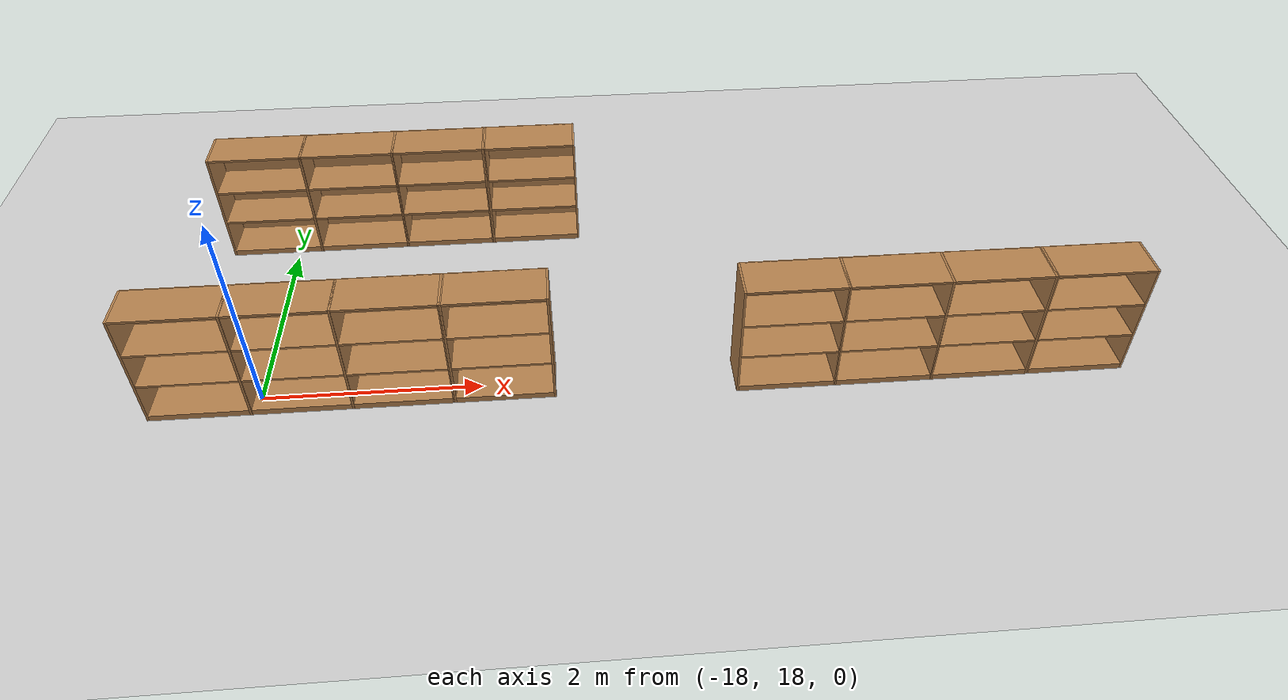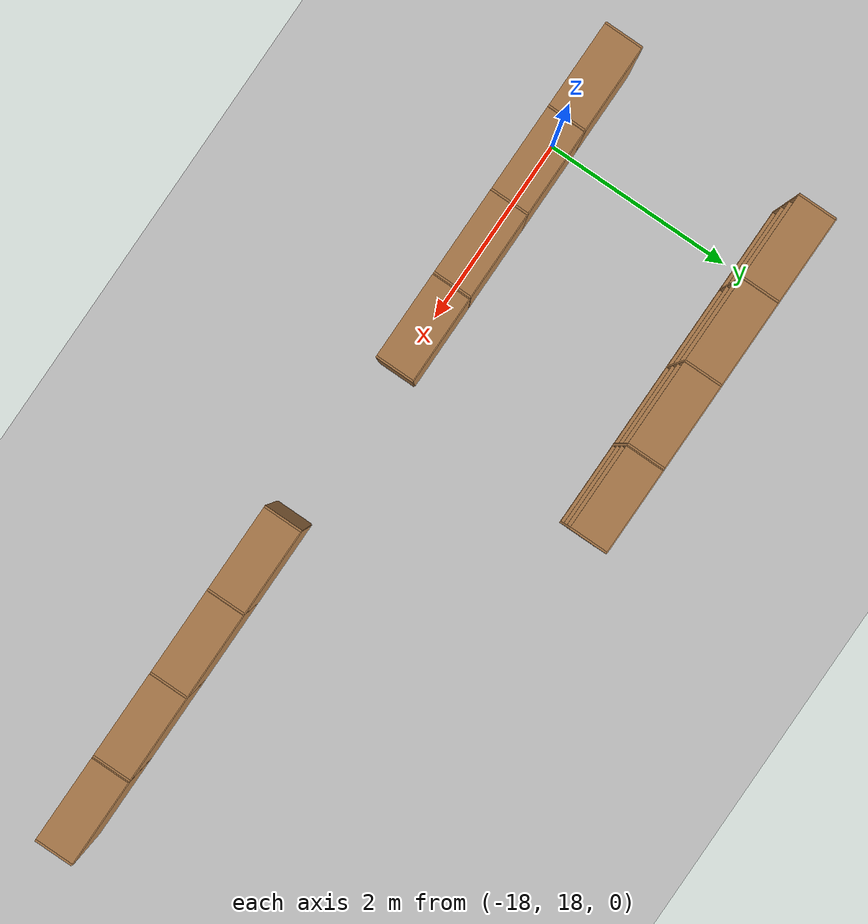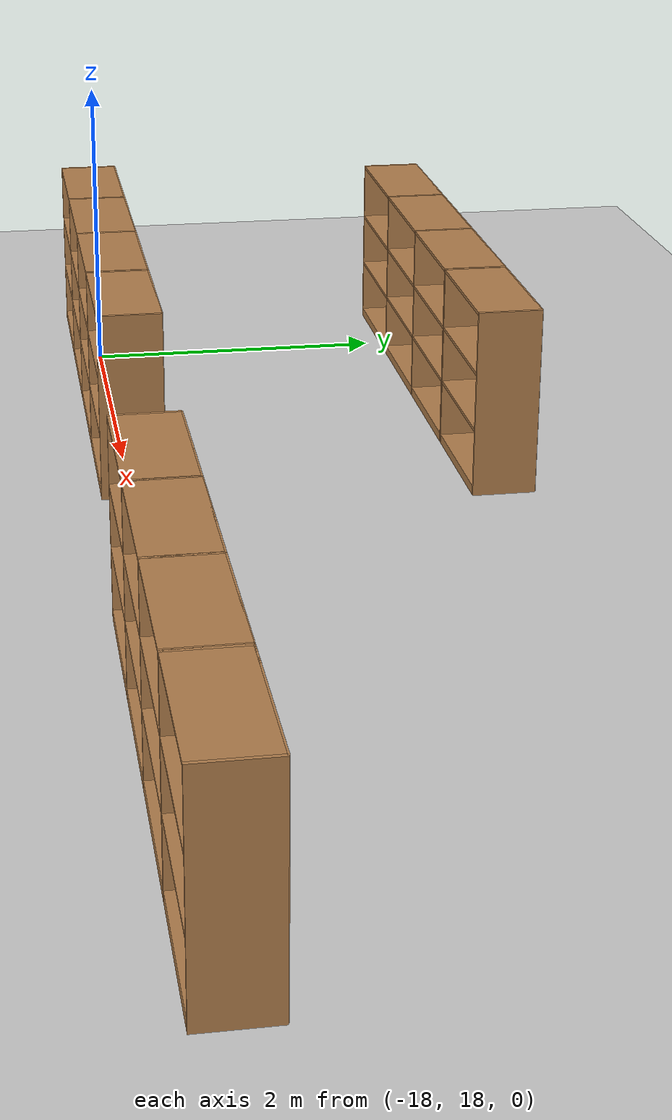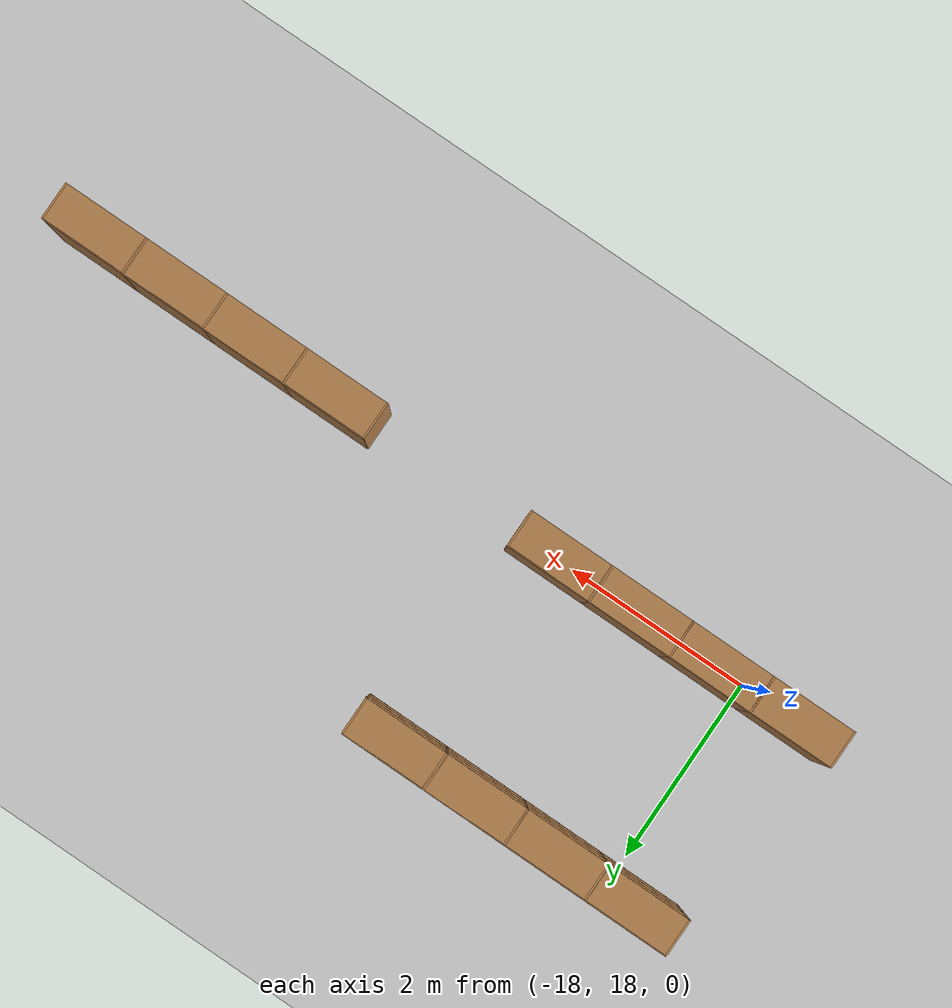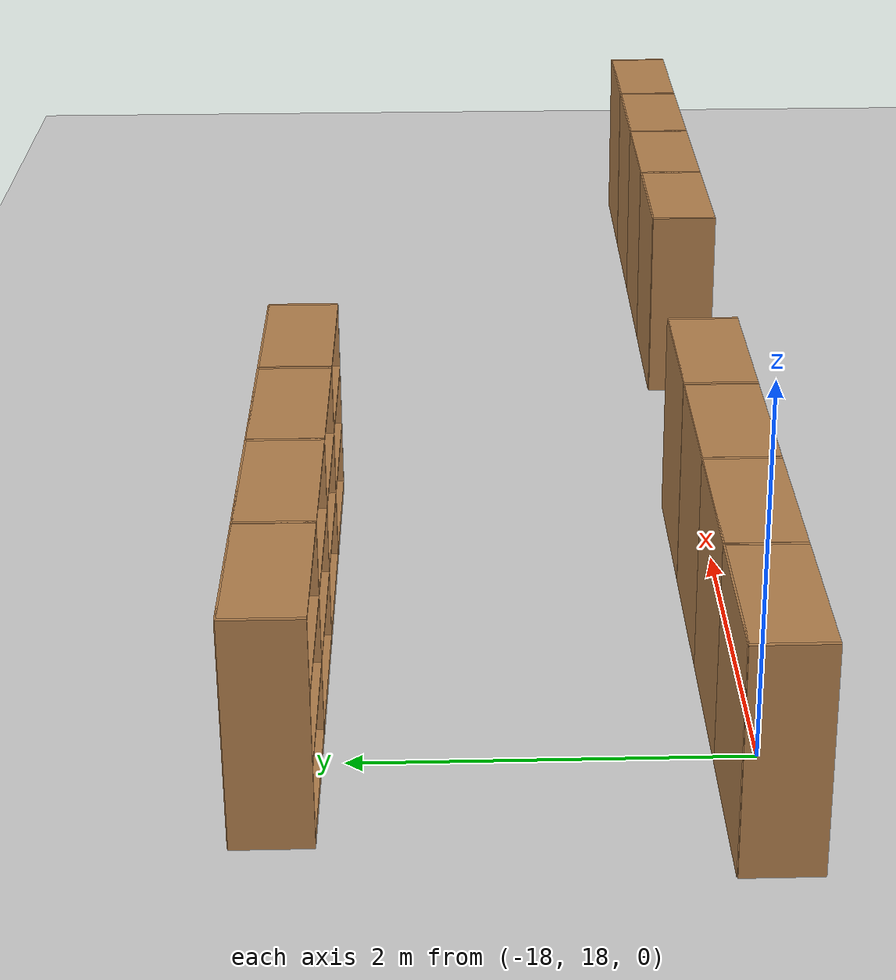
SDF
<sdf version="1.6">
 <world name="default">
  <model name="ground_plane">
   <static>1</static>
   <link name="link">
    <collision name="collision">
     <geometry><plane><normal>0 0 1</normal><size>100 100</size></plane></geometry>
     <surface><friction><ode><mu>100</mu><mu2>50</mu2></ode></friction></surface>
    </collision>
    <visual name="visual">
     <cast_shadows>0</cast_shadows>
     <geometry><plane><normal>0 0 1</normal><size>100 100</size></plane></geometry>
     <material>
      <script><uri>file://media/materials/scripts/gazebo.material</uri><name>Gazebo/Grey</name></script>
     </material>
    </visual>
   </link>
  </model>
  <model name="Bookself-4">
   <model name="Bookself-3">
    <model name="bookshelf_0">
     <static>1</static>
     <link name="link">
      <inertial><mass>1</mass></inertial>
      <collision name="back">
       <pose>0 0.005 0.6 0 -0 0</pose>
       <geometry><box><size>0.9 0.01 1.2</size></box></geometry>
      </collision>
      <visual name="visual1">
       <pose>0 0.005 0.6 0 -0 0</pose>
       <geometry><box><size>0.9 0.01 1.2</size></box></geometry>
       <material>
        <script><uri>file://media/materials/scripts/gazebo.material</uri><name>Gazebo/Wood</name></script>
       </material>
      </visual>
      <collision name="left_side">
       <pose>0.45 -0.195 0.6 0 -0 0</pose>
       <geometry><box><size>0.02 0.4 1.2</size></box></geometry>
      </collision>
      <visual name="visual2">
       <pose>0.45 -0.195 0.6 0 -0 0</pose>
       <geometry><box><size>0.02 0.4 1.2</size></box></geometry>
       <material>
        <script><uri>file://media/materials/scripts/gazebo.material</uri><name>Gazebo/Wood</name></script>
       </material>
      </visual>
      <collision name="right_side">
       <pose>-0.45 -0.195 0.6 0 -0 0</pose>
       <geometry><box><size>0.02 0.4 1.2</size></box></geometry>
      </collision>
      <visual name="visual3">
       <pose>-0.45 -0.195 0.6 0 -0 0</pose>
       <geometry><box><size>0.02 0.4 1.2</size></box></geometry>
       <material>
        <script><uri>file://media/materials/scripts/gazebo.material</uri><name>Gazebo/Wood</name></script>
       </material>
      </visual>
      <collision name="bottom">
       <pose>0 -0.195 0.03 0 -0 0</pose>
       <geometry><box><size>0.88 0.4 0.06</size></box></geometry>
      </collision>
      <visual name="visual4">
       <pose>0 -0.195 0.03 0 -0 0</pose>
       <geometry><box><size>0.88 0.4 0.06</size></box></geometry>
       <material>
        <script><uri>file://media/materials/scripts/gazebo.material</uri><name>Gazebo/Wood</name></script>
       </material>
      </visual>
      <collision name="top">
       <pose>0 -0.195 1.19 0 -0 0</pose>
       <geometry><box><size>0.88 0.4 0.02</size></box></geometry>
      </collision>
      <visual name="visual5">
       <pose>0 -0.195 1.19 0 -0 0</pose>
       <geometry><box><size>0.88 0.4 0.02</size></box></geometry>
       <material>
        <script><uri>file://media/materials/scripts/gazebo.material</uri><name>Gazebo/Wood</name></script>
       </material>
      </visual>
      <collision name="low_shelf">
       <pose>0 -0.195 0.43 0 -0 0</pose>
       <geometry><box><size>0.88 0.4 0.02</size></box></geometry>
      </collision>
      <visual name="visual6">
       <pose>0 -0.195 0.43 0 -0 0</pose>
       <geometry><box><size>0.88 0.4 0.02</size></box></geometry>
       <material>
        <script><uri>file://media/materials/scripts/gazebo.material</uri><name>Gazebo/Wood</name></script>
       </material>
      </visual>
      <collision name="high_shelf">
       <pose>0 -0.195 0.8 0 -0 0</pose>
       <geometry><box><size>0.88 0.4 0.02</size></box></geometry>
      </collision>
      <visual name="visual7">
       <pose>0 -0.195 0.8 0 -0 0</pose>
       <geometry><box><size>0.88 0.4 0.02</size></box></geometry>
       <material>
        <script><uri>file://media/materials/scripts/gazebo.material</uri><name>Gazebo/Wood</name></script>
       </material>
      </visual>
     </link>
     <pose>-0.903039 0 0 0 -0 0</pose>
    </model>
    <model name="bookshelf_1">
     <static>1</static>
     <link name="link">
      <inertial><mass>1</mass></inertial>
      <collision name="back">
       <pose>0 0.005 0.6 0 -0 0</pose>
       <geometry><box><size>0.9 0.01 1.2</size></box></geometry>
      </collision>
      <visual name="visual1">
       <pose>0 0.005 0.6 0 -0 0</pose>
       <geometry><box><size>0.9 0.01 1.2</size></box></geometry>
       <material>
        <script><uri>file://media/materials/scripts/gazebo.material</uri><name>Gazebo/Wood</name></script>
       </material>
      </visual>
      <collision name="left_side">
       <pose>0.45 -0.195 0.6 0 -0 0</pose>
       <geometry><box><size>0.02 0.4 1.2</size></box></geometry>
      </collision>
      <visual name="visual2">
       <pose>0.45 -0.195 0.6 0 -0 0</pose>
       <geometry><box><size>0.02 0.4 1.2</size></box></geometry>
       <material>
        <script><uri>file://media/materials/scripts/gazebo.material</uri><name>Gazebo/Wood</name></script>
       </material>
      </visual>
      <collision name="right_side">
       <pose>-0.45 -0.195 0.6 0 -0 0</pose>
       <geometry><box><size>0.02 0.4 1.2</size></box></geometry>
      </collision>
      <visual name="visual3">
       <pose>-0.45 -0.195 0.6 0 -0 0</pose>
       <geometry><box><size>0.02 0.4 1.2</size></box></geometry>
       <material>
        <script><uri>file://media/materials/scripts/gazebo.material</uri><name>Gazebo/Wood</name></script>
       </material>
      </visual>
      <collision name="bottom">
       <pose>0 -0.195 0.03 0 -0 0</pose>
       <geometry><box><size>0.88 0.4 0.06</size></box></geometry>
      </collision>
      <visual name="visual4">
       <pose>0 -0.195 0.03 0 -0 0</pose>
       <geometry><box><size>0.88 0.4 0.06</size></box></geometry>
       <material>
        <script><uri>file://media/materials/scripts/gazebo.material</uri><name>Gazebo/Wood</name></script>
       </material>
      </visual>
      <collision name="top">
       <pose>0 -0.195 1.19 0 -0 0</pose>
       <geometry><box><size>0.88 0.4 0.02</size></box></geometry>
      </collision>
      <visual name="visual5">
       <pose>0 -0.195 1.19 0 -0 0</pose>
       <geometry><box><size>0.88 0.4 0.02</size></box></geometry>
       <material>
        <script><uri>file://media/materials/scripts/gazebo.material</uri><name>Gazebo/Wood</name></script>
       </material>
      </visual>
      <collision name="low_shelf">
       <pose>0 -0.195 0.43 0 -0 0</pose>
       <geometry><box><size>0.88 0.4 0.02</size></box></geometry>
      </collision>
      <visual name="visual6">
       <pose>0 -0.195 0.43 0 -0 0</pose>
       <geometry><box><size>0.88 0.4 0.02</size></box></geometry>
       <material>
        <script><uri>file://media/materials/scripts/gazebo.material</uri><name>Gazebo/Wood</name></script>
       </material>
      </visual>
      <collision name="high_shelf">
       <pose>0 -0.195 0.8 0 -0 0</pose>
       <geometry><box><size>0.88 0.4 0.02</size></box></geometry>
      </collision>
      <visual name="visual7">
       <pose>0 -0.195 0.8 0 -0 0</pose>
       <geometry><box><size>0.88 0.4 0.02</size></box></geometry>
       <material>
        <script><uri>file://media/materials/scripts/gazebo.material</uri><name>Gazebo/Wood</name></script>
       </material>
      </visual>
     </link>
     <pose>0.000535 0 0 0 -0 0</pose>
    </model>
    <model name="bookshelf_1_clone">
     <static>1</static>
     <link name="link">
      <inertial><mass>1</mass></inertial>
      <collision name="back">
       <pose>0 0.005 0.6 0 -0 0</pose>
       <geometry><box><size>0.9 0.01 1.2</size></box></geometry>
      </collision>
      <visual name="visual1">
       <pose>0 0.005 0.6 0 -0 0</pose>
       <geometry><box><size>0.9 0.01 1.2</size></box></geometry>
       <material>
        <script><uri>file://media/materials/scripts/gazebo.material</uri><name>Gazebo/Wood</name></script>
       </material>
      </visual>
      <collision name="left_side">
       <pose>0.45 -0.195 0.6 0 -0 0</pose>
       <geometry><box><size>0.02 0.4 1.2</size></box></geometry>
      </collision>
      <visual name="visual2">
       <pose>0.45 -0.195 0.6 0 -0 0</pose>
       <geometry><box><size>0.02 0.4 1.2</size></box></geometry>
       <material>
        <script><uri>file://media/materials/scripts/gazebo.material</uri><name>Gazebo/Wood</name></script>
       </material>
      </visual>
      <collision name="right_side">
       <pose>-0.45 -0.195 0.6 0 -0 0</pose>
       <geometry><box><size>0.02 0.4 1.2</size></box></geometry>
      </collision>
      <visual name="visual3">
       <pose>-0.45 -0.195 0.6 0 -0 0</pose>
       <geometry><box><size>0.02 0.4 1.2</size></box></geometry>
       <material>
        <script><uri>file://media/materials/scripts/gazebo.material</uri><name>Gazebo/Wood</name></script>
       </material>
      </visual>
      <collision name="bottom">
       <pose>0 -0.195 0.03 0 -0 0</pose>
       <geometry><box><size>0.88 0.4 0.06</size></box></geometry>
      </collision>
      <visual name="visual4">
       <pose>0 -0.195 0.03 0 -0 0</pose>
       <geometry><box><size>0.88 0.4 0.06</size></box></geometry>
       <material>
        <script><uri>file://media/materials/scripts/gazebo.material</uri><name>Gazebo/Wood</name></script>
       </material>
      </visual>
      <collision name="top">
       <pose>0 -0.195 1.19 0 -0 0</pose>
       <geometry><box><size>0.88 0.4 0.02</size></box></geometry>
      </collision>
      <visual name="visual5">
       <pose>0 -0.195 1.19 0 -0 0</pose>
       <geometry><box><size>0.88 0.4 0.02</size></box></geometry>
       <material>
        <script><uri>file://media/materials/scripts/gazebo.material</uri><name>Gazebo/Wood</name></script>
       </material>
      </visual>
      <collision name="low_shelf">
       <pose>0 -0.195 0.43 0 -0 0</pose>
       <geometry><box><size>0.88 0.4 0.02</size></box></geometry>
      </collision>
      <visual name="visual6">
       <pose>0 -0.195 0.43 0 -0 0</pose>
       <geometry><box><size>0.88 0.4 0.02</size></box></geometry>
       <material>
        <script><uri>file://media/materials/scripts/gazebo.material</uri><name>Gazebo/Wood</name></script>
       </material>
      </visual>
      <collision name="high_shelf">
       <pose>0 -0.195 0.8 0 -0 0</pose>
       <geometry><box><size>0.88 0.4 0.02</size></box></geometry>
      </collision>
      <visual name="visual7">
       <pose>0 -0.195 0.8 0 -0 0</pose>
       <geometry><box><size>0.88 0.4 0.02</size></box></geometry>
       <material>
        <script><uri>file://media/materials/scripts/gazebo.material</uri><name>Gazebo/Wood</name></script>
       </material>
      </visual>
     </link>
     <pose>0.902502 0 0 0 -0 0</pose>
    </model>
    <static>1</static>
    <pose>-0.906894 3e-05 0 0 -0 0</pose>
   </model>
   <model name="bookshelf">
    <static>1</static>
    <link name="link">
     <inertial><mass>1</mass></inertial>
     <collision name="back">
      <pose>0 0.005 0.6 0 -0 0</pose>
      <geometry><box><size>0.9 0.01 1.2</size></box></geometry>
     </collision>
     <visual name="visual1">
      <pose>0 0.005 0.6 0 -0 0</pose>
      <geometry><box><size>0.9 0.01 1.2</size></box></geometry>
      <material>
       <script><uri>file://media/materials/scripts/gazebo.material</uri><name>Gazebo/Wood</name></script>
      </material>
     </visual>
     <collision name="left_side">
      <pose>0.45 -0.195 0.6 0 -0 0</pose>
      <geometry><box><size>0.02 0.4 1.2</size></box></geometry>
     </collision>
     <visual name="visual2">
      <pose>0.45 -0.195 0.6 0 -0 0</pose>
      <geometry><box><size>0.02 0.4 1.2</size></box></geometry>
      <material>
       <script><uri>file://media/materials/scripts/gazebo.material</uri><name>Gazebo/Wood</name></script>
      </material>
     </visual>
     <collision name="right_side">
      <pose>-0.45 -0.195 0.6 0 -0 0</pose>
      <geometry><box><size>0.02 0.4 1.2</size></box></geometry>
     </collision>
     <visual name="visual3">
      <pose>-0.45 -0.195 0.6 0 -0 0</pose>
      <geometry><box><size>0.02 0.4 1.2</size></box></geometry>
      <material>
       <script><uri>file://media/materials/scripts/gazebo.material</uri><name>Gazebo/Wood</name></script>
      </material>
     </visual>
     <collision name="bottom">
      <pose>0 -0.195 0.03 0 -0 0</pose>
      <geometry><box><size>0.88 0.4 0.06</size></box></geometry>
     </collision>
     <visual name="visual4">
      <pose>0 -0.195 0.03 0 -0 0</pose>
      <geometry><box><size>0.88 0.4 0.06</size></box></geometry>
      <material>
       <script><uri>file://media/materials/scripts/gazebo.material</uri><name>Gazebo/Wood</name></script>
      </material>
     </visual>
     <collision name="top">
      <pose>0 -0.195 1.19 0 -0 0</pose>
      <geometry><box><size>0.88 0.4 0.02</size></box></geometry>
     </collision>
     <visual name="visual5">
      <pose>0 -0.195 1.19 0 -0 0</pose>
      <geometry><box><size>0.88 0.4 0.02</size></box></geometry>
      <material>
       <script><uri>file://media/materials/scripts/gazebo.material</uri><name>Gazebo/Wood</name></script>
      </material>
     </visual>
     <collision name="low_shelf">
      <pose>0 -0.195 0.43 0 -0 0</pose>
      <geometry><box><size>0.88 0.4 0.02</size></box></geometry>
     </collision>
     <visual name="visual6">
      <pose>0 -0.195 0.43 0 -0 0</pose>
      <geometry><box><size>0.88 0.4 0.02</size></box></geometry>
      <material>
       <script><uri>file://media/materials/scripts/gazebo.material</uri><name>Gazebo/Wood</name></script>
      </material>
     </visual>
     <collision name="high_shelf">
      <pose>0 -0.195 0.8 0 -0 0</pose>
      <geometry><box><size>0.88 0.4 0.02</size></box></geometry>
     </collision>
     <visual name="visual7">
      <pose>0 -0.195 0.8 0 -0 0</pose>
      <geometry><box><size>0.88 0.4 0.02</size></box></geometry>
      <material>
       <script><uri>file://media/materials/scripts/gazebo.material</uri><name>Gazebo/Wood</name></script>
      </material>
     </visual>
    </link>
    <pose>0.906808 3e-05 0 0 -0 0</pose>
   </model>
   <static>0</static>
   <pose>-16.4159 20.5026 0 0 -0 0</pose>
  </model>
  <model name="Bookself-4_clone_4">
   <model name="Bookself-3">
    <model name="bookshelf_0">
     <static>1</static>
     <link name="link">
      <inertial><mass>1</mass></inertial>
      <collision name="back">
       <pose>0 0.005 0.6 0 -0 0</pose>
       <geometry><box><size>0.9 0.01 1.2</size></box></geometry>
      </collision>
      <visual name="visual1">
       <pose>0 0.005 0.6 0 -0 0</pose>
       <geometry><box><size>0.9 0.01 1.2</size></box></geometry>
       <material>
        <script><uri>file://media/materials/scripts/gazebo.material</uri><name>Gazebo/Wood</name></script>
       </material>
      </visual>
      <collision name="left_side">
       <pose>0.45 -0.195 0.6 0 -0 0</pose>
       <geometry><box><size>0.02 0.4 1.2</size></box></geometry>
      </collision>
      <visual name="visual2">
       <pose>0.45 -0.195 0.6 0 -0 0</pose>
       <geometry><box><size>0.02 0.4 1.2</size></box></geometry>
       <material>
        <script><uri>file://media/materials/scripts/gazebo.material</uri><name>Gazebo/Wood</name></script>
       </material>
      </visual>
      <collision name="right_side">
       <pose>-0.45 -0.195 0.6 0 -0 0</pose>
       <geometry><box><size>0.02 0.4 1.2</size></box></geometry>
      </collision>
      <visual name="visual3">
       <pose>-0.45 -0.195 0.6 0 -0 0</pose>
       <geometry><box><size>0.02 0.4 1.2</size></box></geometry>
       <material>
        <script><uri>file://media/materials/scripts/gazebo.material</uri><name>Gazebo/Wood</name></script>
       </material>
      </visual>
      <collision name="bottom">
       <pose>0 -0.195 0.03 0 -0 0</pose>
       <geometry><box><size>0.88 0.4 0.06</size></box></geometry>
      </collision>
      <visual name="visual4">
       <pose>0 -0.195 0.03 0 -0 0</pose>
       <geometry><box><size>0.88 0.4 0.06</size></box></geometry>
       <material>
        <script><uri>file://media/materials/scripts/gazebo.material</uri><name>Gazebo/Wood</name></script>
       </material>
      </visual>
      <collision name="top">
       <pose>0 -0.195 1.19 0 -0 0</pose>
       <geometry><box><size>0.88 0.4 0.02</size></box></geometry>
      </collision>
      <visual name="visual5">
       <pose>0 -0.195 1.19 0 -0 0</pose>
       <geometry><box><size>0.88 0.4 0.02</size></box></geometry>
       <material>
        <script><uri>file://media/materials/scripts/gazebo.material</uri><name>Gazebo/Wood</name></script>
       </material>
      </visual>
      <collision name="low_shelf">
       <pose>0 -0.195 0.43 0 -0 0</pose>
       <geometry><box><size>0.88 0.4 0.02</size></box></geometry>
      </collision>
      <visual name="visual6">
       <pose>0 -0.195 0.43 0 -0 0</pose>
       <geometry><box><size>0.88 0.4 0.02</size></box></geometry>
       <material>
        <script><uri>file://media/materials/scripts/gazebo.material</uri><name>Gazebo/Wood</name></script>
       </material>
      </visual>
      <collision name="high_shelf">
       <pose>0 -0.195 0.8 0 -0 0</pose>
       <geometry><box><size>0.88 0.4 0.02</size></box></geometry>
      </collision>
      <visual name="visual7">
       <pose>0 -0.195 0.8 0 -0 0</pose>
       <geometry><box><size>0.88 0.4 0.02</size></box></geometry>
       <material>
        <script><uri>file://media/materials/scripts/gazebo.material</uri><name>Gazebo/Wood</name></script>
       </material>
      </visual>
     </link>
     <pose>-0.903039 0 0 0 -0 0</pose>
    </model>
    <model name="bookshelf_1">
     <static>1</static>
     <link name="link">
      <inertial><mass>1</mass></inertial>
      <collision name="back">
       <pose>0 0.005 0.6 0 -0 0</pose>
       <geometry><box><size>0.9 0.01 1.2</size></box></geometry>
      </collision>
      <visual name="visual1">
       <pose>0 0.005 0.6 0 -0 0</pose>
       <geometry><box><size>0.9 0.01 1.2</size></box></geometry>
       <material>
        <script><uri>file://media/materials/scripts/gazebo.material</uri><name>Gazebo/Wood</name></script>
       </material>
      </visual>
      <collision name="left_side">
       <pose>0.45 -0.195 0.6 0 -0 0</pose>
       <geometry><box><size>0.02 0.4 1.2</size></box></geometry>
      </collision>
      <visual name="visual2">
       <pose>0.45 -0.195 0.6 0 -0 0</pose>
       <geometry><box><size>0.02 0.4 1.2</size></box></geometry>
       <material>
        <script><uri>file://media/materials/scripts/gazebo.material</uri><name>Gazebo/Wood</name></script>
       </material>
      </visual>
      <collision name="right_side">
       <pose>-0.45 -0.195 0.6 0 -0 0</pose>
       <geometry><box><size>0.02 0.4 1.2</size></box></geometry>
      </collision>
      <visual name="visual3">
       <pose>-0.45 -0.195 0.6 0 -0 0</pose>
       <geometry><box><size>0.02 0.4 1.2</size></box></geometry>
       <material>
        <script><uri>file://media/materials/scripts/gazebo.material</uri><name>Gazebo/Wood</name></script>
       </material>
      </visual>
      <collision name="bottom">
       <pose>0 -0.195 0.03 0 -0 0</pose>
       <geometry><box><size>0.88 0.4 0.06</size></box></geometry>
      </collision>
      <visual name="visual4">
       <pose>0 -0.195 0.03 0 -0 0</pose>
       <geometry><box><size>0.88 0.4 0.06</size></box></geometry>
       <material>
        <script><uri>file://media/materials/scripts/gazebo.material</uri><name>Gazebo/Wood</name></script>
       </material>
      </visual>
      <collision name="top">
       <pose>0 -0.195 1.19 0 -0 0</pose>
       <geometry><box><size>0.88 0.4 0.02</size></box></geometry>
      </collision>
      <visual name="visual5">
       <pose>0 -0.195 1.19 0 -0 0</pose>
       <geometry><box><size>0.88 0.4 0.02</size></box></geometry>
       <material>
        <script><uri>file://media/materials/scripts/gazebo.material</uri><name>Gazebo/Wood</name></script>
       </material>
      </visual>
      <collision name="low_shelf">
       <pose>0 -0.195 0.43 0 -0 0</pose>
       <geometry><box><size>0.88 0.4 0.02</size></box></geometry>
      </collision>
      <visual name="visual6">
       <pose>0 -0.195 0.43 0 -0 0</pose>
       <geometry><box><size>0.88 0.4 0.02</size></box></geometry>
       <material>
        <script><uri>file://media/materials/scripts/gazebo.material</uri><name>Gazebo/Wood</name></script>
       </material>
      </visual>
      <collision name="high_shelf">
       <pose>0 -0.195 0.8 0 -0 0</pose>
       <geometry><box><size>0.88 0.4 0.02</size></box></geometry>
      </collision>
      <visual name="visual7">
       <pose>0 -0.195 0.8 0 -0 0</pose>
       <geometry><box><size>0.88 0.4 0.02</size></box></geometry>
       <material>
        <script><uri>file://media/materials/scripts/gazebo.material</uri><name>Gazebo/Wood</name></script>
       </material>
      </visual>
     </link>
     <pose>0.000535 0 0 0 -0 0</pose>
    </model>
    <model name="bookshelf_1_clone">
     <static>1</static>
     <link name="link">
      <inertial><mass>1</mass></inertial>
      <collision name="back">
       <pose>0 0.005 0.6 0 -0 0</pose>
       <geometry><box><size>0.9 0.01 1.2</size></box></geometry>
      </collision>
      <visual name="visual1">
       <pose>0 0.005 0.6 0 -0 0</pose>
       <geometry><box><size>0.9 0.01 1.2</size></box></geometry>
       <material>
        <script><uri>file://media/materials/scripts/gazebo.material</uri><name>Gazebo/Wood</name></script>
       </material>
      </visual>
      <collision name="left_side">
       <pose>0.45 -0.195 0.6 0 -0 0</pose>
       <geometry><box><size>0.02 0.4 1.2</size></box></geometry>
      </collision>
      <visual name="visual2">
       <pose>0.45 -0.195 0.6 0 -0 0</pose>
       <geometry><box><size>0.02 0.4 1.2</size></box></geometry>
       <material>
        <script><uri>file://media/materials/scripts/gazebo.material</uri><name>Gazebo/Wood</name></script>
       </material>
      </visual>
      <collision name="right_side">
       <pose>-0.45 -0.195 0.6 0 -0 0</pose>
       <geometry><box><size>0.02 0.4 1.2</size></box></geometry>
      </collision>
      <visual name="visual3">
       <pose>-0.45 -0.195 0.6 0 -0 0</pose>
       <geometry><box><size>0.02 0.4 1.2</size></box></geometry>
       <material>
        <script><uri>file://media/materials/scripts/gazebo.material</uri><name>Gazebo/Wood</name></script>
       </material>
      </visual>
      <collision name="bottom">
       <pose>0 -0.195 0.03 0 -0 0</pose>
       <geometry><box><size>0.88 0.4 0.06</size></box></geometry>
      </collision>
      <visual name="visual4">
       <pose>0 -0.195 0.03 0 -0 0</pose>
       <geometry><box><size>0.88 0.4 0.06</size></box></geometry>
       <material>
        <script><uri>file://media/materials/scripts/gazebo.material</uri><name>Gazebo/Wood</name></script>
       </material>
      </visual>
      <collision name="top">
       <pose>0 -0.195 1.19 0 -0 0</pose>
       <geometry><box><size>0.88 0.4 0.02</size></box></geometry>
      </collision>
      <visual name="visual5">
       <pose>0 -0.195 1.19 0 -0 0</pose>
       <geometry><box><size>0.88 0.4 0.02</size></box></geometry>
       <material>
        <script><uri>file://media/materials/scripts/gazebo.material</uri><name>Gazebo/Wood</name></script>
       </material>
      </visual>
      <collision name="low_shelf">
       <pose>0 -0.195 0.43 0 -0 0</pose>
       <geometry><box><size>0.88 0.4 0.02</size></box></geometry>
      </collision>
      <visual name="visual6">
       <pose>0 -0.195 0.43 0 -0 0</pose>
       <geometry><box><size>0.88 0.4 0.02</size></box></geometry>
       <material>
        <script><uri>file://media/materials/scripts/gazebo.material</uri><name>Gazebo/Wood</name></script>
       </material>
      </visual>
      <collision name="high_shelf">
       <pose>0 -0.195 0.8 0 -0 0</pose>
       <geometry><box><size>0.88 0.4 0.02</size></box></geometry>
      </collision>
      <visual name="visual7">
       <pose>0 -0.195 0.8 0 -0 0</pose>
       <geometry><box><size>0.88 0.4 0.02</size></box></geometry>
       <material>
        <script><uri>file://media/materials/scripts/gazebo.material</uri><name>Gazebo/Wood</name></script>
       </material>
      </visual>
     </link>
     <pose>0.902502 0 0 0 -0 0</pose>
    </model>
    <static>1</static>
    <pose>-0.906894 3e-05 0 0 -0 0</pose>
   </model>
   <model name="bookshelf">
    <static>1</static>
    <link name="link">
     <inertial><mass>1</mass></inertial>
     <collision name="back">
      <pose>0 0.005 0.6 0 -0 0</pose>
      <geometry><box><size>0.9 0.01 1.2</size></box></geometry>
     </collision>
     <visual name="visual1">
      <pose>0 0.005 0.6 0 -0 0</pose>
      <geometry><box><size>0.9 0.01 1.2</size></box></geometry>
      <material>
       <script><uri>file://media/materials/scripts/gazebo.material</uri><name>Gazebo/Wood</name></script>
      </material>
     </visual>
     <collision name="left_side">
      <pose>0.45 -0.195 0.6 0 -0 0</pose>
      <geometry><box><size>0.02 0.4 1.2</size></box></geometry>
     </collision>
     <visual name="visual2">
      <pose>0.45 -0.195 0.6 0 -0 0</pose>
      <geometry><box><size>0.02 0.4 1.2</size></box></geometry>
      <material>
       <script><uri>file://media/materials/scripts/gazebo.material</uri><name>Gazebo/Wood</name></script>
      </material>
     </visual>
     <collision name="right_side">
      <pose>-0.45 -0.195 0.6 0 -0 0</pose>
      <geometry><box><size>0.02 0.4 1.2</size></box></geometry>
     </collision>
     <visual name="visual3">
      <pose>-0.45 -0.195 0.6 0 -0 0</pose>
      <geometry><box><size>0.02 0.4 1.2</size></box></geometry>
      <material>
       <script><uri>file://media/materials/scripts/gazebo.material</uri><name>Gazebo/Wood</name></script>
      </material>
     </visual>
     <collision name="bottom">
      <pose>0 -0.195 0.03 0 -0 0</pose>
      <geometry><box><size>0.88 0.4 0.06</size></box></geometry>
     </collision>
     <visual name="visual4">
      <pose>0 -0.195 0.03 0 -0 0</pose>
      <geometry><box><size>0.88 0.4 0.06</size></box></geometry>
      <material>
       <script><uri>file://media/materials/scripts/gazebo.material</uri><name>Gazebo/Wood</name></script>
      </material>
     </visual>
     <collision name="top">
      <pose>0 -0.195 1.19 0 -0 0</pose>
      <geometry><box><size>0.88 0.4 0.02</size></box></geometry>
     </collision>
     <visual name="visual5">
      <pose>0 -0.195 1.19 0 -0 0</pose>
      <geometry><box><size>0.88 0.4 0.02</size></box></geometry>
      <material>
       <script><uri>file://media/materials/scripts/gazebo.material</uri><name>Gazebo/Wood</name></script>
      </material>
     </visual>
     <collision name="low_shelf">
      <pose>0 -0.195 0.43 0 -0 0</pose>
      <geometry><box><size>0.88 0.4 0.02</size></box></geometry>
     </collision>
     <visual name="visual6">
      <pose>0 -0.195 0.43 0 -0 0</pose>
      <geometry><box><size>0.88 0.4 0.02</size></box></geometry>
      <material>
       <script><uri>file://media/materials/scripts/gazebo.material</uri><name>Gazebo/Wood</name></script>
      </material>
     </visual>
     <collision name="high_shelf">
      <pose>0 -0.195 0.8 0 -0 0</pose>
      <geometry><box><size>0.88 0.4 0.02</size></box></geometry>
     </collision>
     <visual name="visual7">
      <pose>0 -0.195 0.8 0 -0 0</pose>
      <geometry><box><size>0.88 0.4 0.02</size></box></geometry>
      <material>
       <script><uri>file://media/materials/scripts/gazebo.material</uri><name>Gazebo/Wood</name></script>
      </material>
     </visual>
    </link>
    <pose>0.906808 3e-05 0 0 -0 0</pose>
   </model>
   <static>0</static>
   <pose>-11.4157 18.1456 0 0 -0 0</pose>
  </model>
  <model name="Bookself-4_clone_7">
   <model name="Bookself-3">
    <model name="bookshelf_0">
     <static>1</static>
     <link name="link">
      <inertial><mass>1</mass></inertial>
      <collision name="back">
       <pose>0 0.005 0.6 0 -0 0</pose>
       <geometry><box><size>0.9 0.01 1.2</size></box></geometry>
      </collision>
      <visual name="visual1">
       <pose>0 0.005 0.6 0 -0 0</pose>
       <geometry><box><size>0.9 0.01 1.2</size></box></geometry>
       <material>
        <script><uri>file://media/materials/scripts/gazebo.material</uri><name>Gazebo/Wood</name></script>
       </material>
      </visual>
      <collision name="left_side">
       <pose>0.45 -0.195 0.6 0 -0 0</pose>
       <geometry><box><size>0.02 0.4 1.2</size></box></geometry>
      </collision>
      <visual name="visual2">
       <pose>0.45 -0.195 0.6 0 -0 0</pose>
       <geometry><box><size>0.02 0.4 1.2</size></box></geometry>
       <material>
        <script><uri>file://media/materials/scripts/gazebo.material</uri><name>Gazebo/Wood</name></script>
       </material>
      </visual>
      <collision name="right_side">
       <pose>-0.45 -0.195 0.6 0 -0 0</pose>
       <geometry><box><size>0.02 0.4 1.2</size></box></geometry>
      </collision>
      <visual name="visual3">
       <pose>-0.45 -0.195 0.6 0 -0 0</pose>
       <geometry><box><size>0.02 0.4 1.2</size></box></geometry>
       <material>
        <script><uri>file://media/materials/scripts/gazebo.material</uri><name>Gazebo/Wood</name></script>
       </material>
      </visual>
      <collision name="bottom">
       <pose>0 -0.195 0.03 0 -0 0</pose>
       <geometry><box><size>0.88 0.4 0.06</size></box></geometry>
      </collision>
      <visual name="visual4">
       <pose>0 -0.195 0.03 0 -0 0</pose>
       <geometry><box><size>0.88 0.4 0.06</size></box></geometry>
       <material>
        <script><uri>file://media/materials/scripts/gazebo.material</uri><name>Gazebo/Wood</name></script>
       </material>
      </visual>
      <collision name="top">
       <pose>0 -0.195 1.19 0 -0 0</pose>
       <geometry><box><size>0.88 0.4 0.02</size></box></geometry>
      </collision>
      <visual name="visual5">
       <pose>0 -0.195 1.19 0 -0 0</pose>
       <geometry><box><size>0.88 0.4 0.02</size></box></geometry>
       <material>
        <script><uri>file://media/materials/scripts/gazebo.material</uri><name>Gazebo/Wood</name></script>
       </material>
      </visual>
      <collision name="low_shelf">
       <pose>0 -0.195 0.43 0 -0 0</pose>
       <geometry><box><size>0.88 0.4 0.02</size></box></geometry>
      </collision>
      <visual name="visual6">
       <pose>0 -0.195 0.43 0 -0 0</pose>
       <geometry><box><size>0.88 0.4 0.02</size></box></geometry>
       <material>
        <script><uri>file://media/materials/scripts/gazebo.material</uri><name>Gazebo/Wood</name></script>
       </material>
      </visual>
      <collision name="high_shelf">
       <pose>0 -0.195 0.8 0 -0 0</pose>
       <geometry><box><size>0.88 0.4 0.02</size></box></geometry>
      </collision>
      <visual name="visual7">
       <pose>0 -0.195 0.8 0 -0 0</pose>
       <geometry><box><size>0.88 0.4 0.02</size></box></geometry>
       <material>
        <script><uri>file://media/materials/scripts/gazebo.material</uri><name>Gazebo/Wood</name></script>
       </material>
      </visual>
     </link>
     <pose>-0.903039 0 0 0 -0 0</pose>
    </model>
    <model name="bookshelf_1">
     <static>1</static>
     <link name="link">
      <inertial><mass>1</mass></inertial>
      <collision name="back">
       <pose>0 0.005 0.6 0 -0 0</pose>
       <geometry><box><size>0.9 0.01 1.2</size></box></geometry>
      </collision>
      <visual name="visual1">
       <pose>0 0.005 0.6 0 -0 0</pose>
       <geometry><box><size>0.9 0.01 1.2</size></box></geometry>
       <material>
        <script><uri>file://media/materials/scripts/gazebo.material</uri><name>Gazebo/Wood</name></script>
       </material>
      </visual>
      <collision name="left_side">
       <pose>0.45 -0.195 0.6 0 -0 0</pose>
       <geometry><box><size>0.02 0.4 1.2</size></box></geometry>
      </collision>
      <visual name="visual2">
       <pose>0.45 -0.195 0.6 0 -0 0</pose>
       <geometry><box><size>0.02 0.4 1.2</size></box></geometry>
       <material>
        <script><uri>file://media/materials/scripts/gazebo.material</uri><name>Gazebo/Wood</name></script>
       </material>
      </visual>
      <collision name="right_side">
       <pose>-0.45 -0.195 0.6 0 -0 0</pose>
       <geometry><box><size>0.02 0.4 1.2</size></box></geometry>
      </collision>
      <visual name="visual3">
       <pose>-0.45 -0.195 0.6 0 -0 0</pose>
       <geometry><box><size>0.02 0.4 1.2</size></box></geometry>
       <material>
        <script><uri>file://media/materials/scripts/gazebo.material</uri><name>Gazebo/Wood</name></script>
       </material>
      </visual>
      <collision name="bottom">
       <pose>0 -0.195 0.03 0 -0 0</pose>
       <geometry><box><size>0.88 0.4 0.06</size></box></geometry>
      </collision>
      <visual name="visual4">
       <pose>0 -0.195 0.03 0 -0 0</pose>
       <geometry><box><size>0.88 0.4 0.06</size></box></geometry>
       <material>
        <script><uri>file://media/materials/scripts/gazebo.material</uri><name>Gazebo/Wood</name></script>
       </material>
      </visual>
      <collision name="top">
       <pose>0 -0.195 1.19 0 -0 0</pose>
       <geometry><box><size>0.88 0.4 0.02</size></box></geometry>
      </collision>
      <visual name="visual5">
       <pose>0 -0.195 1.19 0 -0 0</pose>
       <geometry><box><size>0.88 0.4 0.02</size></box></geometry>
       <material>
        <script><uri>file://media/materials/scripts/gazebo.material</uri><name>Gazebo/Wood</name></script>
       </material>
      </visual>
      <collision name="low_shelf">
       <pose>0 -0.195 0.43 0 -0 0</pose>
       <geometry><box><size>0.88 0.4 0.02</size></box></geometry>
      </collision>
      <visual name="visual6">
       <pose>0 -0.195 0.43 0 -0 0</pose>
       <geometry><box><size>0.88 0.4 0.02</size></box></geometry>
       <material>
        <script><uri>file://media/materials/scripts/gazebo.material</uri><name>Gazebo/Wood</name></script>
       </material>
      </visual>
      <collision name="high_shelf">
       <pose>0 -0.195 0.8 0 -0 0</pose>
       <geometry><box><size>0.88 0.4 0.02</size></box></geometry>
      </collision>
      <visual name="visual7">
       <pose>0 -0.195 0.8 0 -0 0</pose>
       <geometry><box><size>0.88 0.4 0.02</size></box></geometry>
       <material>
        <script><uri>file://media/materials/scripts/gazebo.material</uri><name>Gazebo/Wood</name></script>
       </material>
      </visual>
     </link>
     <pose>0.000535 0 0 0 -0 0</pose>
    </model>
    <model name="bookshelf_1_clone">
     <static>1</static>
     <link name="link">
      <inertial><mass>1</mass></inertial>
      <collision name="back">
       <pose>0 0.005 0.6 0 -0 0</pose>
       <geometry><box><size>0.9 0.01 1.2</size></box></geometry>
      </collision>
      <visual name="visual1">
       <pose>0 0.005 0.6 0 -0 0</pose>
       <geometry><box><size>0.9 0.01 1.2</size></box></geometry>
       <material>
        <script><uri>file://media/materials/scripts/gazebo.material</uri><name>Gazebo/Wood</name></script>
       </material>
      </visual>
      <collision name="left_side">
       <pose>0.45 -0.195 0.6 0 -0 0</pose>
       <geometry><box><size>0.02 0.4 1.2</size></box></geometry>
      </collision>
      <visual name="visual2">
       <pose>0.45 -0.195 0.6 0 -0 0</pose>
       <geometry><box><size>0.02 0.4 1.2</size></box></geometry>
       <material>
        <script><uri>file://media/materials/scripts/gazebo.material</uri><name>Gazebo/Wood</name></script>
       </material>
      </visual>
      <collision name="right_side">
       <pose>-0.45 -0.195 0.6 0 -0 0</pose>
       <geometry><box><size>0.02 0.4 1.2</size></box></geometry>
      </collision>
      <visual name="visual3">
       <pose>-0.45 -0.195 0.6 0 -0 0</pose>
       <geometry><box><size>0.02 0.4 1.2</size></box></geometry>
       <material>
        <script><uri>file://media/materials/scripts/gazebo.material</uri><name>Gazebo/Wood</name></script>
       </material>
      </visual>
      <collision name="bottom">
       <pose>0 -0.195 0.03 0 -0 0</pose>
       <geometry><box><size>0.88 0.4 0.06</size></box></geometry>
      </collision>
      <visual name="visual4">
       <pose>0 -0.195 0.03 0 -0 0</pose>
       <geometry><box><size>0.88 0.4 0.06</size></box></geometry>
       <material>
        <script><uri>file://media/materials/scripts/gazebo.material</uri><name>Gazebo/Wood</name></script>
       </material>
      </visual>
      <collision name="top">
       <pose>0 -0.195 1.19 0 -0 0</pose>
       <geometry><box><size>0.88 0.4 0.02</size></box></geometry>
      </collision>
      <visual name="visual5">
       <pose>0 -0.195 1.19 0 -0 0</pose>
       <geometry><box><size>0.88 0.4 0.02</size></box></geometry>
       <material>
        <script><uri>file://media/materials/scripts/gazebo.material</uri><name>Gazebo/Wood</name></script>
       </material>
      </visual>
      <collision name="low_shelf">
       <pose>0 -0.195 0.43 0 -0 0</pose>
       <geometry><box><size>0.88 0.4 0.02</size></box></geometry>
      </collision>
      <visual name="visual6">
       <pose>0 -0.195 0.43 0 -0 0</pose>
       <geometry><box><size>0.88 0.4 0.02</size></box></geometry>
       <material>
        <script><uri>file://media/materials/scripts/gazebo.material</uri><name>Gazebo/Wood</name></script>
       </material>
      </visual>
      <collision name="high_shelf">
       <pose>0 -0.195 0.8 0 -0 0</pose>
       <geometry><box><size>0.88 0.4 0.02</size></box></geometry>
      </collision>
      <visual name="visual7">
       <pose>0 -0.195 0.8 0 -0 0</pose>
       <geometry><box><size>0.88 0.4 0.02</size></box></geometry>
       <material>
        <script><uri>file://media/materials/scripts/gazebo.material</uri><name>Gazebo/Wood</name></script>
       </material>
      </visual>
     </link>
     <pose>0.902502 0 0 0 -0 0</pose>
    </model>
    <static>1</static>
    <pose>-0.906894 3e-05 0 0 -0 0</pose>
   </model>
   <model name="bookshelf">
    <static>1</static>
    <link name="link">
     <inertial><mass>1</mass></inertial>
     <collision name="back">
      <pose>0 0.005 0.6 0 -0 0</pose>
      <geometry><box><size>0.9 0.01 1.2</size></box></geometry>
     </collision>
     <visual name="visual1">
      <pose>0 0.005 0.6 0 -0 0</pose>
      <geometry><box><size>0.9 0.01 1.2</size></box></geometry>
      <material>
       <script><uri>file://media/materials/scripts/gazebo.material</uri><name>Gazebo/Wood</name></script>
      </material>
     </visual>
     <collision name="left_side">
      <pose>0.45 -0.195 0.6 0 -0 0</pose>
      <geometry><box><size>0.02 0.4 1.2</size></box></geometry>
     </collision>
     <visual name="visual2">
      <pose>0.45 -0.195 0.6 0 -0 0</pose>
      <geometry><box><size>0.02 0.4 1.2</size></box></geometry>
      <material>
       <script><uri>file://media/materials/scripts/gazebo.material</uri><name>Gazebo/Wood</name></script>
      </material>
     </visual>
     <collision name="right_side">
      <pose>-0.45 -0.195 0.6 0 -0 0</pose>
      <geometry><box><size>0.02 0.4 1.2</size></box></geometry>
     </collision>
     <visual name="visual3">
      <pose>-0.45 -0.195 0.6 0 -0 0</pose>
      <geometry><box><size>0.02 0.4 1.2</size></box></geometry>
      <material>
       <script><uri>file://media/materials/scripts/gazebo.material</uri><name>Gazebo/Wood</name></script>
      </material>
     </visual>
     <collision name="bottom">
      <pose>0 -0.195 0.03 0 -0 0</pose>
      <geometry><box><size>0.88 0.4 0.06</size></box></geometry>
     </collision>
     <visual name="visual4">
      <pose>0 -0.195 0.03 0 -0 0</pose>
      <geometry><box><size>0.88 0.4 0.06</size></box></geometry>
      <material>
       <script><uri>file://media/materials/scripts/gazebo.material</uri><name>Gazebo/Wood</name></script>
      </material>
     </visual>
     <collision name="top">
      <pose>0 -0.195 1.19 0 -0 0</pose>
      <geometry><box><size>0.88 0.4 0.02</size></box></geometry>
     </collision>
     <visual name="visual5">
      <pose>0 -0.195 1.19 0 -0 0</pose>
      <geometry><box><size>0.88 0.4 0.02</size></box></geometry>
      <material>
       <script><uri>file://media/materials/scripts/gazebo.material</uri><name>Gazebo/Wood</name></script>
      </material>
     </visual>
     <collision name="low_shelf">
      <pose>0 -0.195 0.43 0 -0 0</pose>
      <geometry><box><size>0.88 0.4 0.02</size></box></geometry>
     </collision>
     <visual name="visual6">
      <pose>0 -0.195 0.43 0 -0 0</pose>
      <geometry><box><size>0.88 0.4 0.02</size></box></geometry>
      <material>
       <script><uri>file://media/materials/scripts/gazebo.material</uri><name>Gazebo/Wood</name></script>
      </material>
     </visual>
     <collision name="high_shelf">
      <pose>0 -0.195 0.8 0 -0 0</pose>
      <geometry><box><size>0.88 0.4 0.02</size></box></geometry>
     </collision>
     <visual name="visual7">
      <pose>0 -0.195 0.8 0 -0 0</pose>
      <geometry><box><size>0.88 0.4 0.02</size></box></geometry>
      <material>
       <script><uri>file://media/materials/scripts/gazebo.material</uri><name>Gazebo/Wood</name></script>
      </material>
     </visual>
    </link>
    <pose>0.906808 3e-05 0 0 -0 0</pose>
   </model>
   <static>0</static>
   <pose>-16.699 18.2085 0 0 -0 0</pose>
  </model>
 </world>
</sdf>
